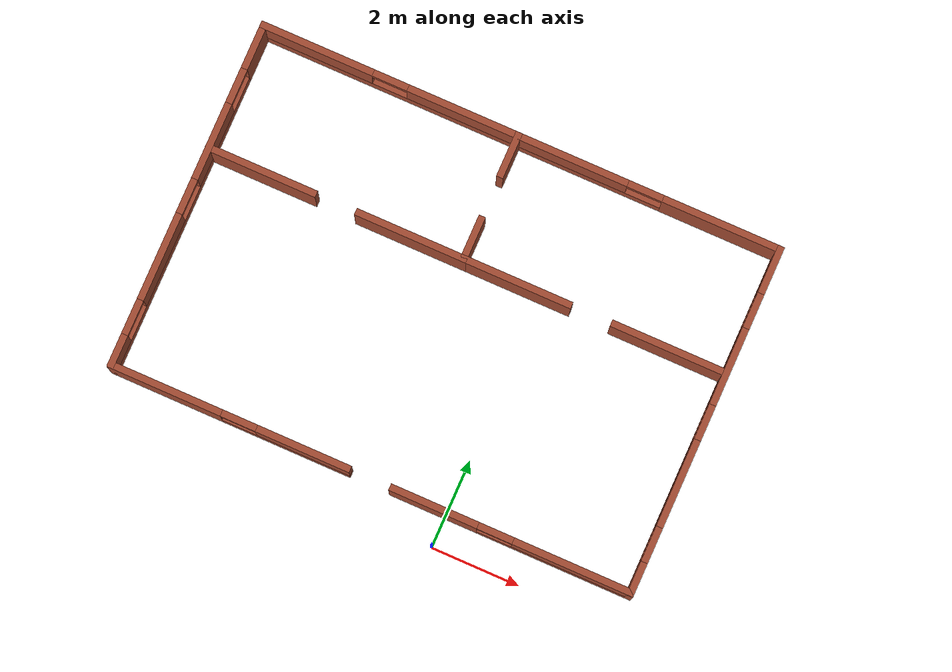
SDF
<?xml version='1.0'?>
<sdf version='1.7'>
  <model name='short_room'>
    <pose>-1.7245 4.33 0 0 -0 0</pose>
    <link name='Wall_16'>
      <pose>-5.9245 0.33 0 0 -0 -1.5708</pose>
      <visual name='Wall_16_Visual_0'>
        <pose>-3.4545 0 0.75 0 -0 0</pose>
        <geometry>
          <box>
            <size>1.091 0.15 1.5</size>
          </box>
        </geometry>
        <material>
          <script>
            <uri>file://media/materials/scripts/gazebo.material</uri>
            <name>Gazebo/Bricks</name>
          </script>
          <ambient>1 1 1 1</ambient>
        </material>
        <meta>
          <layer>0</layer>
        </meta>
      </visual>
      <collision name='Wall_16_Collision_0'>
        <geometry>
          <box>
            <size>1.091 0.15 1.5</size>
          </box>
        </geometry>
        <pose>-3.4545 0 0.75 0 -0 0</pose>
      </collision>
      <visual name='Wall_16_Visual_1'>
        <pose>0.5455 0 0.25 0 -0 0</pose>
        <geometry>
          <box>
            <size>6.909 0.15 0.5</size>
          </box>
        </geometry>
        <material>
          <script>
            <uri>file://media/materials/scripts/gazebo.material</uri>
            <name>Gazebo/Bricks</name>
          </script>
          <ambient>1 1 1 1</ambient>
        </material>
        <meta>
          <layer>0</layer>
        </meta>
      </visual>
      <collision name='Wall_16_Collision_1'>
        <geometry>
          <box>
            <size>6.909 0.15 0.5</size>
          </box>
        </geometry>
        <pose>0.5455 0 0.25 0 -0 0</pose>
      </collision>
      <visual name='Wall_16_Visual_2'>
        <pose>-1.23069 0 1 0 -0 0</pose>
        <geometry>
          <box>
            <size>1.75663 0.15 1</size>
          </box>
        </geometry>
        <material>
          <script>
            <uri>file://media/materials/scripts/gazebo.material</uri>
            <name>Gazebo/Bricks</name>
          </script>
          <ambient>1 1 1 1</ambient>
        </material>
        <meta>
          <layer>0</layer>
        </meta>
      </visual>
      <collision name='Wall_16_Collision_2'>
        <geometry>
          <box>
            <size>1.75663 0.15 1</size>
          </box>
        </geometry>
        <pose>-1.23069 0 1 0 -0 0</pose>
      </collision>
      <visual name='Wall_16_Visual_3'>
        <pose>1.44233 0 1 0 -0 0</pose>
        <geometry>
          <box>
            <size>1.9894 0.15 1</size>
          </box>
        </geometry>
        <material>
          <script>
            <uri>file://media/materials/scripts/gazebo.material</uri>
            <name>Gazebo/Bricks</name>
          </script>
          <ambient>1 1 1 1</ambient>
        </material>
        <meta>
          <layer>0</layer>
        </meta>
      </visual>
      <collision name='Wall_16_Collision_3'>
        <geometry>
          <box>
            <size>1.9894 0.15 1</size>
          </box>
        </geometry>
        <pose>1.44233 0 1 0 -0 0</pose>
      </collision>
      <visual name='Wall_16_Visual_4'>
        <pose>3.61851 0 1 0 -0 0</pose>
        <geometry>
          <box>
            <size>0.762973 0.15 1</size>
          </box>
        </geometry>
        <material>
          <script>
            <uri>file://media/materials/scripts/gazebo.material</uri>
            <name>Gazebo/Bricks</name>
          </script>
          <ambient>1 1 1 1</ambient>
        </material>
        <meta>
          <layer>0</layer>
        </meta>
      </visual>
      <collision name='Wall_16_Collision_4'>
        <geometry>
          <box>
            <size>0.762973 0.15 1</size>
          </box>
        </geometry>
        <pose>3.61851 0 1 0 -0 0</pose>
      </collision>
      <visual name='Wall_16_Visual_5'>
        <pose>-2.509 0 1.4 0 -0 0</pose>
        <geometry>
          <box>
            <size>0.8 0.15 0.2</size>
          </box>
        </geometry>
        <material>
          <script>
            <uri>file://media/materials/scripts/gazebo.material</uri>
            <name>Gazebo/Bricks</name>
          </script>
          <ambient>1 1 1 1</ambient>
        </material>
        <meta>
          <layer>0</layer>
        </meta>
      </visual>
      <collision name='Wall_16_Collision_5'>
        <geometry>
          <box>
            <size>0.8 0.15 0.2</size>
          </box>
        </geometry>
        <pose>-2.509 0 1.4 0 -0 0</pose>
      </collision>
      <visual name='Wall_16_Visual_6'>
        <pose>0.047629 0 1.4 0 -0 0</pose>
        <geometry>
          <box>
            <size>0.8 0.15 0.2</size>
          </box>
        </geometry>
        <material>
          <script>
            <uri>file://media/materials/scripts/gazebo.material</uri>
            <name>Gazebo/Bricks</name>
          </script>
          <ambient>1 1 1 1</ambient>
        </material>
        <meta>
          <layer>0</layer>
        </meta>
      </visual>
      <collision name='Wall_16_Collision_6'>
        <geometry>
          <box>
            <size>0.8 0.15 0.2</size>
          </box>
        </geometry>
        <pose>0.047629 0 1.4 0 -0 0</pose>
      </collision>
      <visual name='Wall_16_Visual_7'>
        <pose>2.83703 0 1.4 0 -0 0</pose>
        <geometry>
          <box>
            <size>0.8 0.15 0.2</size>
          </box>
        </geometry>
        <material>
          <script>
            <uri>file://media/materials/scripts/gazebo.material</uri>
            <name>Gazebo/Bricks</name>
          </script>
          <ambient>1 1 1 1</ambient>
        </material>
        <meta>
          <layer>0</layer>
        </meta>
      </visual>
      <collision name='Wall_16_Collision_7'>
        <geometry>
          <box>
            <size>0.8 0.15 0.2</size>
          </box>
        </geometry>
        <pose>2.83703 0 1.4 0 -0 0</pose>
      </collision>
    </link>
    <link name='Wall_17'>
      <pose>0.0005 -3.595 0 0 -0 0</pose>
      <visual name='Wall_17_Visual_0'>
        <pose>-4.7005 0 0.75 0 -0 0</pose>
        <geometry>
          <box>
            <size>2.599 0.15 1.5</size>
          </box>
        </geometry>
        <material>
          <script>
            <uri>file://media/materials/scripts/gazebo.material</uri>
            <name>Gazebo/Bricks</name>
          </script>
          <ambient>1 1 1 1</ambient>
        </material>
        <meta>
          <layer>0</layer>
        </meta>
      </visual>
      <collision name='Wall_17_Collision_0'>
        <geometry>
          <box>
            <size>2.599 0.15 1.5</size>
          </box>
        </geometry>
        <pose>-4.7005 0 0.75 0 -0 0</pose>
      </collision>
      <visual name='Wall_17_Visual_1'>
        <pose>1.44509 0 0.75 0 -0 0</pose>
        <geometry>
          <box>
            <size>2.00581 0.15 1.5</size>
          </box>
        </geometry>
        <material>
          <script>
            <uri>file://media/materials/scripts/gazebo.material</uri>
            <name>Gazebo/Bricks</name>
          </script>
          <ambient>1 1 1 1</ambient>
        </material>
        <meta>
          <layer>0</layer>
        </meta>
      </visual>
      <collision name='Wall_17_Collision_1'>
        <geometry>
          <box>
            <size>2.00581 0.15 1.5</size>
          </box>
        </geometry>
        <pose>1.44509 0 0.75 0 -0 0</pose>
      </collision>
      <visual name='Wall_17_Visual_2'>
        <pose>-1.92941 0 0.25 0 -0 0</pose>
        <geometry>
          <box>
            <size>2.94319 0.15 0.5</size>
          </box>
        </geometry>
        <material>
          <script>
            <uri>file://media/materials/scripts/gazebo.material</uri>
            <name>Gazebo/Bricks</name>
          </script>
          <ambient>1 1 1 1</ambient>
        </material>
        <meta>
          <layer>0</layer>
        </meta>
      </visual>
      <collision name='Wall_17_Collision_2'>
        <geometry>
          <box>
            <size>2.94319 0.15 0.5</size>
          </box>
        </geometry>
        <pose>-1.92941 0 0.25 0 -0 0</pose>
      </collision>
      <visual name='Wall_17_Visual_3'>
        <pose>4.224 0 0.25 0 -0 0</pose>
        <geometry>
          <box>
            <size>3.552 0.15 0.5</size>
          </box>
        </geometry>
        <material>
          <script>
            <uri>file://media/materials/scripts/gazebo.material</uri>
            <name>Gazebo/Bricks</name>
          </script>
          <ambient>1 1 1 1</ambient>
        </material>
        <meta>
          <layer>0</layer>
        </meta>
      </visual>
      <collision name='Wall_17_Collision_3'>
        <geometry>
          <box>
            <size>3.552 0.15 0.5</size>
          </box>
        </geometry>
        <pose>4.224 0 0.25 0 -0 0</pose>
      </collision>
      <visual name='Wall_17_Visual_4'>
        <pose>-1.52941 0 1 0 -0 0</pose>
        <geometry>
          <box>
            <size>2.14319 0.15 1</size>
          </box>
        </geometry>
        <material>
          <script>
            <uri>file://media/materials/scripts/gazebo.material</uri>
            <name>Gazebo/Bricks</name>
          </script>
          <ambient>1 1 1 1</ambient>
        </material>
        <meta>
          <layer>0</layer>
        </meta>
      </visual>
      <collision name='Wall_17_Collision_4'>
        <geometry>
          <box>
            <size>2.14319 0.15 1</size>
          </box>
        </geometry>
        <pose>-1.52941 0 1 0 -0 0</pose>
      </collision>
      <visual name='Wall_17_Visual_5'>
        <pose>-1.52941 0 1 0 -0 0</pose>
        <geometry>
          <box>
            <size>2.14319 0.15 1</size>
          </box>
        </geometry>
        <material>
          <script>
            <uri>file://media/materials/scripts/gazebo.material</uri>
            <name>Gazebo/Bricks</name>
          </script>
          <ambient>1 1 1 1</ambient>
        </material>
        <meta>
          <layer>0</layer>
        </meta>
      </visual>
      <collision name='Wall_17_Collision_5'>
        <geometry>
          <box>
            <size>2.14319 0.15 1</size>
          </box>
        </geometry>
        <pose>-1.52941 0 1 0 -0 0</pose>
      </collision>
      <visual name='Wall_17_Visual_6'>
        <pose>4.624 0 1 0 -0 0</pose>
        <geometry>
          <box>
            <size>2.752 0.15 1</size>
          </box>
        </geometry>
        <material>
          <script>
            <uri>file://media/materials/scripts/gazebo.material</uri>
            <name>Gazebo/Bricks</name>
          </script>
          <ambient>1 1 1 1</ambient>
        </material>
        <meta>
          <layer>0</layer>
        </meta>
      </visual>
      <collision name='Wall_17_Collision_6'>
        <geometry>
          <box>
            <size>2.752 0.15 1</size>
          </box>
        </geometry>
        <pose>4.624 0 1 0 -0 0</pose>
      </collision>
      <visual name='Wall_17_Visual_7'>
        <pose>-3.001 0 1.4 0 -0 0</pose>
        <geometry>
          <box>
            <size>0.8 0.15 0.2</size>
          </box>
        </geometry>
        <material>
          <script>
            <uri>file://media/materials/scripts/gazebo.material</uri>
            <name>Gazebo/Bricks</name>
          </script>
          <ambient>1 1 1 1</ambient>
        </material>
        <meta>
          <layer>0</layer>
        </meta>
      </visual>
      <collision name='Wall_17_Collision_7'>
        <geometry>
          <box>
            <size>0.8 0.15 0.2</size>
          </box>
        </geometry>
        <pose>-3.001 0 1.4 0 -0 0</pose>
      </collision>
      <visual name='Wall_17_Visual_8'>
        <pose>2.848 0 1.4 0 -0 0</pose>
        <geometry>
          <box>
            <size>0.8 0.15 0.2</size>
          </box>
        </geometry>
        <material>
          <script>
            <uri>file://media/materials/scripts/gazebo.material</uri>
            <name>Gazebo/Bricks</name>
          </script>
          <ambient>1 1 1 1</ambient>
        </material>
        <meta>
          <layer>0</layer>
        </meta>
      </visual>
      <collision name='Wall_17_Collision_8'>
        <geometry>
          <box>
            <size>0.8 0.15 0.2</size>
          </box>
        </geometry>
        <pose>2.848 0 1.4 0 -0 0</pose>
      </collision>
    </link>
    <link name='Wall_18'>
      <pose>5.9255 0.33 0 0 -0 1.5708</pose>
      <visual name='Wall_18_Visual_0'>
        <pose>-3.6185 0 0.75 0 -0 0</pose>
        <geometry>
          <box>
            <size>0.763 0.15 1.5</size>
          </box>
        </geometry>
        <material>
          <script>
            <uri>file://media/materials/scripts/gazebo.material</uri>
            <name>Gazebo/Bricks</name>
          </script>
          <ambient>1 1 1 1</ambient>
        </material>
        <meta>
          <layer>0</layer>
        </meta>
      </visual>
      <collision name='Wall_18_Collision_0'>
        <geometry>
          <box>
            <size>0.763 0.15 1.5</size>
          </box>
        </geometry>
        <pose>-3.6185 0 0.75 0 -0 0</pose>
      </collision>
      <visual name='Wall_18_Visual_1'>
        <pose>0.3815 0 0.25 0 -0 0</pose>
        <geometry>
          <box>
            <size>7.237 0.15 0.5</size>
          </box>
        </geometry>
        <material>
          <script>
            <uri>file://media/materials/scripts/gazebo.material</uri>
            <name>Gazebo/Bricks</name>
          </script>
          <ambient>1 1 1 1</ambient>
        </material>
        <meta>
          <layer>0</layer>
        </meta>
      </visual>
      <collision name='Wall_18_Collision_1'>
        <geometry>
          <box>
            <size>7.237 0.15 0.5</size>
          </box>
        </geometry>
        <pose>0.3815 0 0.25 0 -0 0</pose>
      </collision>
      <visual name='Wall_18_Visual_2'>
        <pose>-1.4425 0 1 0 -0 0</pose>
        <geometry>
          <box>
            <size>1.989 0.15 1</size>
          </box>
        </geometry>
        <material>
          <script>
            <uri>file://media/materials/scripts/gazebo.material</uri>
            <name>Gazebo/Bricks</name>
          </script>
          <ambient>1 1 1 1</ambient>
        </material>
        <meta>
          <layer>0</layer>
        </meta>
      </visual>
      <collision name='Wall_18_Collision_2'>
        <geometry>
          <box>
            <size>1.989 0.15 1</size>
          </box>
        </geometry>
        <pose>-1.4425 0 1 0 -0 0</pose>
      </collision>
      <visual name='Wall_18_Visual_3'>
        <pose>1.2305 0 1 0 -0 0</pose>
        <geometry>
          <box>
            <size>1.757 0.15 1</size>
          </box>
        </geometry>
        <material>
          <script>
            <uri>file://media/materials/scripts/gazebo.material</uri>
            <name>Gazebo/Bricks</name>
          </script>
          <ambient>1 1 1 1</ambient>
        </material>
        <meta>
          <layer>0</layer>
        </meta>
      </visual>
      <collision name='Wall_18_Collision_3'>
        <geometry>
          <box>
            <size>1.757 0.15 1</size>
          </box>
        </geometry>
        <pose>1.2305 0 1 0 -0 0</pose>
      </collision>
      <visual name='Wall_18_Visual_4'>
        <pose>3.4545 0 1 0 -0 0</pose>
        <geometry>
          <box>
            <size>1.091 0.15 1</size>
          </box>
        </geometry>
        <material>
          <script>
            <uri>file://media/materials/scripts/gazebo.material</uri>
            <name>Gazebo/Bricks</name>
          </script>
          <ambient>1 1 1 1</ambient>
        </material>
        <meta>
          <layer>0</layer>
        </meta>
      </visual>
      <collision name='Wall_18_Collision_4'>
        <geometry>
          <box>
            <size>1.091 0.15 1</size>
          </box>
        </geometry>
        <pose>3.4545 0 1 0 -0 0</pose>
      </collision>
      <visual name='Wall_18_Visual_5'>
        <pose>-2.837 0 1.4 0 -0 0</pose>
        <geometry>
          <box>
            <size>0.8 0.15 0.2</size>
          </box>
        </geometry>
        <material>
          <script>
            <uri>file://media/materials/scripts/gazebo.material</uri>
            <name>Gazebo/Bricks</name>
          </script>
          <ambient>1 1 1 1</ambient>
        </material>
        <meta>
          <layer>0</layer>
        </meta>
      </visual>
      <collision name='Wall_18_Collision_5'>
        <geometry>
          <box>
            <size>0.8 0.15 0.2</size>
          </box>
        </geometry>
        <pose>-2.837 0 1.4 0 -0 0</pose>
      </collision>
      <visual name='Wall_18_Visual_6'>
        <pose>-0.048 0 1.4 0 -0 0</pose>
        <geometry>
          <box>
            <size>0.8 0.15 0.2</size>
          </box>
        </geometry>
        <material>
          <script>
            <uri>file://media/materials/scripts/gazebo.material</uri>
            <name>Gazebo/Bricks</name>
          </script>
          <ambient>1 1 1 1</ambient>
        </material>
        <meta>
          <layer>0</layer>
        </meta>
      </visual>
      <collision name='Wall_18_Collision_6'>
        <geometry>
          <box>
            <size>0.8 0.15 0.2</size>
          </box>
        </geometry>
        <pose>-0.048 0 1.4 0 -0 0</pose>
      </collision>
      <visual name='Wall_18_Visual_7'>
        <pose>2.509 0 1.4 0 -0 0</pose>
        <geometry>
          <box>
            <size>0.8 0.15 0.2</size>
          </box>
        </geometry>
        <material>
          <script>
            <uri>file://media/materials/scripts/gazebo.material</uri>
            <name>Gazebo/Bricks</name>
          </script>
          <ambient>1 1 1 1</ambient>
        </material>
        <meta>
          <layer>0</layer>
        </meta>
      </visual>
      <collision name='Wall_18_Collision_7'>
        <geometry>
          <box>
            <size>0.8 0.15 0.2</size>
          </box>
        </geometry>
        <pose>2.509 0 1.4 0 -0 0</pose>
      </collision>
    </link>
    <link name='Wall_19'>
      <pose>0.0005 4.255 0 0 -0 3.14159</pose>
      <visual name='Wall_19_Visual_0'>
        <pose>-4.624 0 0.75 0 -0 0</pose>
        <geometry>
          <box>
            <size>2.752 0.15 1.5</size>
          </box>
        </geometry>
        <material>
          <script>
            <uri>file://media/materials/scripts/gazebo.material</uri>
            <name>Gazebo/Bricks</name>
          </script>
          <ambient>1 1 1 1</ambient>
        </material>
        <meta>
          <layer>0</layer>
        </meta>
      </visual>
      <collision name='Wall_19_Collision_0'>
        <geometry>
          <box>
            <size>2.752 0.15 1.5</size>
          </box>
        </geometry>
        <pose>-4.624 0 0.75 0 -0 0</pose>
      </collision>
      <visual name='Wall_19_Visual_1'>
        <pose>1.376 0 0.25 0 -0 0</pose>
        <geometry>
          <box>
            <size>9.248 0.15 0.5</size>
          </box>
        </geometry>
        <material>
          <script>
            <uri>file://media/materials/scripts/gazebo.material</uri>
            <name>Gazebo/Bricks</name>
          </script>
          <ambient>1 1 1 1</ambient>
        </material>
        <meta>
          <layer>0</layer>
        </meta>
      </visual>
      <collision name='Wall_19_Collision_1'>
        <geometry>
          <box>
            <size>9.248 0.15 0.5</size>
          </box>
        </geometry>
        <pose>1.376 0 0.25 0 -0 0</pose>
      </collision>
      <visual name='Wall_19_Visual_2'>
        <pose>0.0765 0 1 0 -0 0</pose>
        <geometry>
          <box>
            <size>5.049 0.15 1</size>
          </box>
        </geometry>
        <material>
          <script>
            <uri>file://media/materials/scripts/gazebo.material</uri>
            <name>Gazebo/Bricks</name>
          </script>
          <ambient>1 1 1 1</ambient>
        </material>
        <meta>
          <layer>0</layer>
        </meta>
      </visual>
      <collision name='Wall_19_Collision_2'>
        <geometry>
          <box>
            <size>5.049 0.15 1</size>
          </box>
        </geometry>
        <pose>0.0765 0 1 0 -0 0</pose>
      </collision>
      <visual name='Wall_19_Visual_3'>
        <pose>4.7005 0 1 0 -0 0</pose>
        <geometry>
          <box>
            <size>2.599 0.15 1</size>
          </box>
        </geometry>
        <material>
          <script>
            <uri>file://media/materials/scripts/gazebo.material</uri>
            <name>Gazebo/Bricks</name>
          </script>
          <ambient>1 1 1 1</ambient>
        </material>
        <meta>
          <layer>0</layer>
        </meta>
      </visual>
      <collision name='Wall_19_Collision_3'>
        <geometry>
          <box>
            <size>2.599 0.15 1</size>
          </box>
        </geometry>
        <pose>4.7005 0 1 0 -0 0</pose>
      </collision>
      <visual name='Wall_19_Visual_4'>
        <pose>-2.848 0 1.4 0 -0 0</pose>
        <geometry>
          <box>
            <size>0.8 0.15 0.2</size>
          </box>
        </geometry>
        <material>
          <script>
            <uri>file://media/materials/scripts/gazebo.material</uri>
            <name>Gazebo/Bricks</name>
          </script>
          <ambient>1 1 1 1</ambient>
        </material>
        <meta>
          <layer>0</layer>
        </meta>
      </visual>
      <collision name='Wall_19_Collision_4'>
        <geometry>
          <box>
            <size>0.8 0.15 0.2</size>
          </box>
        </geometry>
        <pose>-2.848 0 1.4 0 -0 0</pose>
      </collision>
      <visual name='Wall_19_Visual_5'>
        <pose>3.001 0 1.4 0 -0 0</pose>
        <geometry>
          <box>
            <size>0.8 0.15 0.2</size>
          </box>
        </geometry>
        <material>
          <script>
            <uri>file://media/materials/scripts/gazebo.material</uri>
            <name>Gazebo/Bricks</name>
          </script>
          <ambient>1 1 1 1</ambient>
        </material>
        <meta>
          <layer>0</layer>
        </meta>
      </visual>
      <collision name='Wall_19_Collision_5'>
        <geometry>
          <box>
            <size>0.8 0.15 0.2</size>
          </box>
        </geometry>
        <pose>3.001 0 1.4 0 -0 0</pose>
      </collision>
    </link>
    <link name='Wall_22'>
      <pose>-0.075 2.8335 0 0 -0 -1.57115</pose>
      <visual name='Wall_22_Visual_0'>
        <pose>-0.975794 0 0.75 0 -0 0</pose>
        <geometry>
          <box>
            <size>1.04058 0.15 1.5</size>
          </box>
        </geometry>
        <material>
          <script>
            <uri>file://media/materials/scripts/gazebo.material</uri>
            <name>Gazebo/Bricks</name>
          </script>
          <ambient>1 1 1 1</ambient>
        </material>
        <meta>
          <layer>0</layer>
        </meta>
      </visual>
      <collision name='Wall_22_Collision_0'>
        <geometry>
          <box>
            <size>1.04058 0.15 1.5</size>
          </box>
        </geometry>
        <pose>-0.975794 0 0.75 0 -0 0</pose>
      </collision>
      <visual name='Wall_22_Visual_1'>
        <pose>0.97029 0 0.75 0 -0 0</pose>
        <geometry>
          <box>
            <size>1.05159 0.15 1.5</size>
          </box>
        </geometry>
        <material>
          <script>
            <uri>file://media/materials/scripts/gazebo.material</uri>
            <name>Gazebo/Bricks</name>
          </script>
          <ambient>1 1 1 1</ambient>
        </material>
        <meta>
          <layer>0</layer>
        </meta>
      </visual>
      <collision name='Wall_22_Collision_1'>
        <geometry>
          <box>
            <size>1.05159 0.15 1.5</size>
          </box>
        </geometry>
        <pose>0.97029 0 0.75 0 -0 0</pose>
      </collision>
    </link>
    <link name='Wall_23'>
      <pose>2.8595 1.412 0 0 -0 0</pose>
      <visual name='Wall_23_Visual_0'>
        <pose>-1.73529 0 0.75 0 -0 0</pose>
        <geometry>
          <box>
            <size>2.54943 0.15 1.5</size>
          </box>
        </geometry>
        <material>
          <script>
            <uri>file://media/materials/scripts/gazebo.material</uri>
            <name>Gazebo/Bricks</name>
          </script>
          <ambient>1 1 1 1</ambient>
        </material>
        <meta>
          <layer>0</layer>
        </meta>
      </visual>
      <collision name='Wall_23_Collision_0'>
        <geometry>
          <box>
            <size>2.54943 0.15 1.5</size>
          </box>
        </geometry>
        <pose>-1.73529 0 0.75 0 -0 0</pose>
      </collision>
      <visual name='Wall_23_Visual_1'>
        <pose>1.72471 0 0.75 0 -0 0</pose>
        <geometry>
          <box>
            <size>2.57057 0.15 1.5</size>
          </box>
        </geometry>
        <material>
          <script>
            <uri>file://media/materials/scripts/gazebo.material</uri>
            <name>Gazebo/Bricks</name>
          </script>
          <ambient>1 1 1 1</ambient>
        </material>
        <meta>
          <layer>0</layer>
        </meta>
      </visual>
      <collision name='Wall_23_Collision_1'>
        <geometry>
          <box>
            <size>2.57057 0.15 1.5</size>
          </box>
        </geometry>
        <pose>1.72471 0 0.75 0 -0 0</pose>
      </collision>
    </link>
    <link name='Wall_25'>
      <pose>-3.0005 1.412 0 0 -0 3.14159</pose>
      <visual name='Wall_25_Visual_0'>
        <pose>-1.72497 0 0.75 0 -0 0</pose>
        <geometry>
          <box>
            <size>2.55005 0.15 1.5</size>
          </box>
        </geometry>
        <material>
          <script>
            <uri>file://media/materials/scripts/gazebo.material</uri>
            <name>Gazebo/Bricks</name>
          </script>
          <ambient>1 1 1 1</ambient>
        </material>
        <meta>
          <layer>0</layer>
        </meta>
      </visual>
      <collision name='Wall_25_Collision_0'>
        <geometry>
          <box>
            <size>2.55005 0.15 1.5</size>
          </box>
        </geometry>
        <pose>-1.72497 0 0.75 0 -0 0</pose>
      </collision>
      <visual name='Wall_25_Visual_1'>
        <pose>1.72503 0 0.75 0 -0 0</pose>
        <geometry>
          <box>
            <size>2.54995 0.15 1.5</size>
          </box>
        </geometry>
        <material>
          <script>
            <uri>file://media/materials/scripts/gazebo.material</uri>
            <name>Gazebo/Bricks</name>
          </script>
          <ambient>1 1 1 1</ambient>
        </material>
        <meta>
          <layer>0</layer>
        </meta>
      </visual>
      <collision name='Wall_25_Collision_1'>
        <geometry>
          <box>
            <size>2.54995 0.15 1.5</size>
          </box>
        </geometry>
        <pose>1.72503 0 0.75 0 -0 0</pose>
      </collision>
    </link>
    <static>1</static>
  </model>
</sdf>
